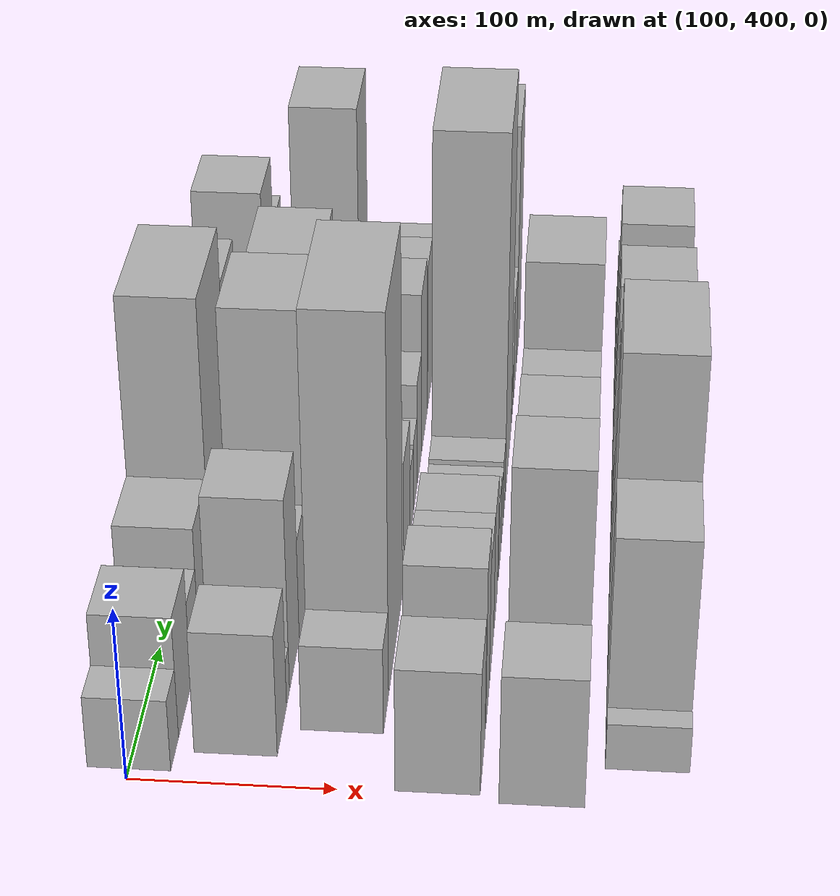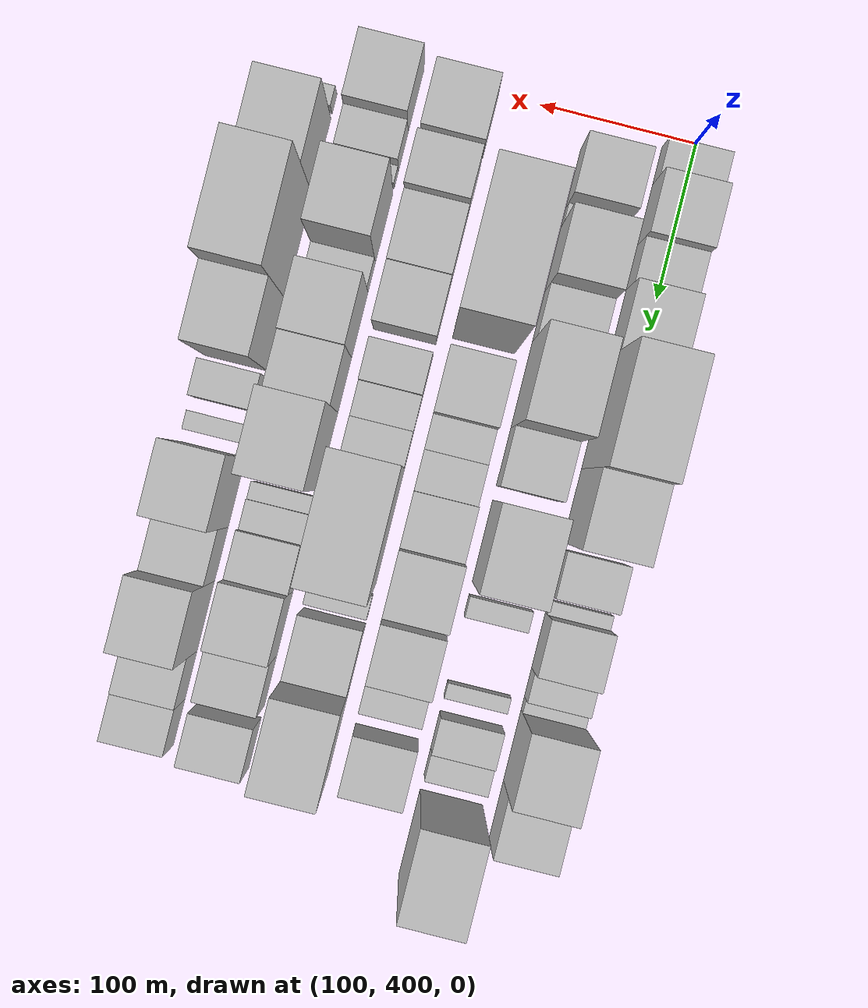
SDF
<sdf version="1.6">
 <world name="default">
  <model name="building_34">
   <static>1</static>
   <pose>100.0000 419.4224 0 0.000000 0.000000 0.000000</pose>
   <link name="link">
    <pose>0 0 21.00 0 0 0</pose>
    <collision name="collision"><geometry><box><size>40.0000 24.1710 42.0000</size></box></geometry></collision>
    <visual name="visual">
     <cast_shadows>0</cast_shadows>
     <geometry><box><size>40.0000 24.1710 42.0000</size></box></geometry>
     <material>
      <script>
       <uri>model://HANNAS_wall/materials/scripts</uri>
       <uri>model://HANNAS_wall/materials/textures</uri>
       <name>vrc/HANNAS_wall</name>
      </script>
     </material>
    </visual>
   </link>
  </model>
  <model name="building_35">
   <static>1</static>
   <pose>100.0000 451.1182 0 0.000000 0.000000 0.000000</pose>
   <link name="link">
    <pose>0 0 36.00 0 0 0</pose>
    <collision name="collision"><geometry><box><size>40.0000 39.2206 72.0000</size></box></geometry></collision>
    <visual name="visual">
     <cast_shadows>0</cast_shadows>
     <geometry><box><size>40.0000 39.2206 72.0000</size></box></geometry>
     <material>
      <script>
       <uri>model://HANNAS_wall/materials/scripts</uri>
       <uri>model://HANNAS_wall/materials/textures</uri>
       <name>vrc/HANNAS_wall</name>
      </script>
     </material>
    </visual>
   </link>
  </model>
  <model name="building_36">
   <static>1</static>
   <pose>100.0000 484.8960 0 0.000000 0.000000 0.000000</pose>
   <link name="link">
    <pose>0 0 25.50 0 0 0</pose>
    <collision name="collision"><geometry><box><size>40.0000 28.3350 51.0000</size></box></geometry></collision>
    <visual name="visual">
     <cast_shadows>0</cast_shadows>
     <geometry><box><size>40.0000 28.3350 51.0000</size></box></geometry>
     <material>
      <script>
       <uri>model://HANNAS_wall/materials/scripts</uri>
       <uri>model://HANNAS_wall/materials/textures</uri>
       <name>vrc/HANNAS_wall</name>
      </script>
     </material>
    </visual>
   </link>
  </model>
  <model name="building_37">
   <static>1</static>
   <pose>100.0000 520.7871 0 0.000000 0.000000 0.000000</pose>
   <link name="link">
    <pose>0 0 37.50 0 0 0</pose>
    <collision name="collision"><geometry><box><size>40.0000 43.4472 75.0000</size></box></geometry></collision>
    <visual name="visual">
     <cast_shadows>0</cast_shadows>
     <geometry><box><size>40.0000 43.4472 75.0000</size></box></geometry>
     <material>
      <script>
       <uri>model://HANNAS_wall/materials/scripts</uri>
       <uri>model://HANNAS_wall/materials/textures</uri>
       <name>vrc/HANNAS_wall</name>
      </script>
     </material>
    </visual>
   </link>
  </model>
  <model name="building_38">
   <static>1</static>
   <pose>100.0000 578.3830 0 0.000000 0.000000 0.000000</pose>
   <link name="link">
    <pose>0 0 90.00 0 0 0</pose>
    <collision name="collision"><geometry><box><size>40.0000 71.7446 180.0000</size></box></geometry></collision>
    <visual name="visual">
     <cast_shadows>0</cast_shadows>
     <geometry><box><size>40.0000 71.7446 180.0000</size></box></geometry>
     <material>
      <script>
       <uri>model://HANNAS_wall/materials/scripts</uri>
       <uri>model://HANNAS_wall/materials/textures</uri>
       <name>vrc/HANNAS_wall</name>
      </script>
     </material>
    </visual>
   </link>
  </model>
  <model name="building_39">
   <static>1</static>
   <pose>100.0000 637.8473 0 0.000000 0.000000 0.000000</pose>
   <link name="link">
    <pose>0 0 73.50 0 0 0</pose>
    <collision name="collision"><geometry><box><size>40.0000 47.1841 147.0000</size></box></geometry></collision>
    <visual name="visual">
     <cast_shadows>0</cast_shadows>
     <geometry><box><size>40.0000 47.1841 147.0000</size></box></geometry>
     <material>
      <script>
       <uri>model://HANNAS_wall/materials/scripts</uri>
       <uri>model://HANNAS_wall/materials/textures</uri>
       <name>vrc/HANNAS_wall</name>
      </script>
     </material>
    </visual>
   </link>
  </model>
  <model name="building_40">
   <static>1</static>
   <pose>100.0000 680.1774 0 0.000000 0.000000 0.000000</pose>
   <link name="link">
    <pose>0 0 27.00 0 0 0</pose>
    <collision name="collision"><geometry><box><size>40.0000 29.4762 54.0000</size></box></geometry></collision>
    <visual name="visual">
     <cast_shadows>0</cast_shadows>
     <geometry><box><size>40.0000 29.4762 54.0000</size></box></geometry>
     <material>
      <script>
       <uri>model://HANNAS_wall/materials/scripts</uri>
       <uri>model://HANNAS_wall/materials/textures</uri>
       <name>vrc/HANNAS_wall</name>
      </script>
     </material>
    </visual>
   </link>
  </model>
  <model name="building_41">
   <static>1</static>
   <pose>100.0000 702.4432 0 0.000000 0.000000 0.000000</pose>
   <link name="link">
    <pose>0 0 10.50 0 0 0</pose>
    <collision name="collision"><geometry><box><size>40.0000 9.0554 21.0000</size></box></geometry></collision>
    <visual name="visual">
     <cast_shadows>0</cast_shadows>
     <geometry><box><size>40.0000 9.0554 21.0000</size></box></geometry>
     <material>
      <script>
       <uri>model://HANNAS_wall/materials/scripts</uri>
       <uri>model://HANNAS_wall/materials/textures</uri>
       <name>vrc/HANNAS_wall</name>
      </script>
     </material>
    </visual>
   </link>
  </model>
  <model name="building_42">
   <static>1</static>
   <pose>100.0000 724.6677 0 0.000000 0.000000 0.000000</pose>
   <link name="link">
    <pose>0 0 31.50 0 0 0</pose>
    <collision name="collision"><geometry><box><size>40.0000 35.3935 63.0000</size></box></geometry></collision>
    <visual name="visual">
     <cast_shadows>0</cast_shadows>
     <geometry><box><size>40.0000 35.3935 63.0000</size></box></geometry>
     <material>
      <script>
       <uri>model://HANNAS_wall/materials/scripts</uri>
       <uri>model://HANNAS_wall/materials/textures</uri>
       <name>vrc/HANNAS_wall</name>
      </script>
     </material>
    </visual>
   </link>
  </model>
  <model name="building_43">
   <static>1</static>
   <pose>100.0000 751.5607 0 0.000000 0.000000 0.000000</pose>
   <link name="link">
    <pose>0 0 18.00 0 0 0</pose>
    <collision name="collision"><geometry><box><size>40.0000 18.3925 36.0000</size></box></geometry></collision>
    <visual name="visual">
     <cast_shadows>0</cast_shadows>
     <geometry><box><size>40.0000 18.3925 36.0000</size></box></geometry>
     <material>
      <script>
       <uri>model://HANNAS_wall/materials/scripts</uri>
       <uri>model://HANNAS_wall/materials/textures</uri>
       <name>vrc/HANNAS_wall</name>
      </script>
     </material>
    </visual>
   </link>
  </model>
  <model name="building_44">
   <static>1</static>
   <pose>100.0000 764.9816 0 0.000000 0.000000 0.000000</pose>
   <link name="link">
    <pose>0 0 10.50 0 0 0</pose>
    <collision name="collision"><geometry><box><size>40.0000 8.4495 21.0000</size></box></geometry></collision>
    <visual name="visual">
     <cast_shadows>0</cast_shadows>
     <geometry><box><size>40.0000 8.4495 21.0000</size></box></geometry>
     <material>
      <script>
       <uri>model://HANNAS_wall/materials/scripts</uri>
       <uri>model://HANNAS_wall/materials/textures</uri>
       <name>vrc/HANNAS_wall</name>
      </script>
     </material>
    </visual>
   </link>
  </model>
  <model name="building_45">
   <static>1</static>
   <pose>100.0000 791.9245 0 0.000000 0.000000 0.000000</pose>
   <link name="link">
    <pose>0 0 58.50 0 0 0</pose>
    <collision name="collision"><geometry><box><size>40.0000 45.4362 117.0000</size></box></geometry></collision>
    <visual name="visual">
     <cast_shadows>0</cast_shadows>
     <geometry><box><size>40.0000 45.4362 117.0000</size></box></geometry>
     <material>
      <script>
       <uri>model://HANNAS_wall/materials/scripts</uri>
       <uri>model://HANNAS_wall/materials/textures</uri>
       <name>vrc/HANNAS_wall</name>
      </script>
     </material>
    </visual>
   </link>
  </model>
  <model name="building_46">
   <static>1</static>
   <pose>100.0000 833.3077 0 0.000000 0.000000 0.000000</pose>
   <link name="link">
    <pose>0 0 36.00 0 0 0</pose>
    <collision name="collision"><geometry><box><size>40.0000 37.3301 72.0000</size></box></geometry></collision>
    <visual name="visual">
     <cast_shadows>0</cast_shadows>
     <geometry><box><size>40.0000 37.3301 72.0000</size></box></geometry>
     <material>
      <script>
       <uri>model://HANNAS_wall/materials/scripts</uri>
       <uri>model://HANNAS_wall/materials/textures</uri>
       <name>vrc/HANNAS_wall</name>
      </script>
     </material>
    </visual>
   </link>
  </model>
  <model name="building_85">
   <static>1</static>
   <pose>149.0000 440.3022 0 0.000000 0.000000 0.000000</pose>
   <link name="link">
    <pose>0 0 36.00 0 0 0</pose>
    <collision name="collision"><geometry><box><size>40.0000 37.3948 72.0000</size></box></geometry></collision>
    <visual name="visual">
     <cast_shadows>0</cast_shadows>
     <geometry><box><size>40.0000 37.3948 72.0000</size></box></geometry>
     <material>
      <script>
       <uri>model://HANNAS_wall/materials/scripts</uri>
       <uri>model://HANNAS_wall/materials/textures</uri>
       <name>vrc/HANNAS_wall</name>
      </script>
     </material>
    </visual>
   </link>
  </model>
  <model name="building_86">
   <static>1</static>
   <pose>149.0000 465.1572 0 0.000000 0.000000 0.000000</pose>
   <link name="link">
    <pose>0 0 13.50 0 0 0</pose>
    <collision name="collision"><geometry><box><size>40.0000 12.3152 27.0000</size></box></geometry></collision>
    <visual name="visual">
     <cast_shadows>0</cast_shadows>
     <geometry><box><size>40.0000 12.3152 27.0000</size></box></geometry>
     <material>
      <script>
       <uri>model://HANNAS_wall/materials/scripts</uri>
       <uri>model://HANNAS_wall/materials/textures</uri>
       <name>vrc/HANNAS_wall</name>
      </script>
     </material>
    </visual>
   </link>
  </model>
  <model name="building_87">
   <static>1</static>
   <pose>149.0000 492.0625 0 0.000000 0.000000 0.000000</pose>
   <link name="link">
    <pose>0 0 57.00 0 0 0</pose>
    <collision name="collision"><geometry><box><size>40.0000 41.4954 114.0000</size></box></geometry></collision>
    <visual name="visual">
     <cast_shadows>0</cast_shadows>
     <geometry><box><size>40.0000 41.4954 114.0000</size></box></geometry>
     <material>
      <script>
       <uri>model://HANNAS_wall/materials/scripts</uri>
       <uri>model://HANNAS_wall/materials/textures</uri>
       <name>vrc/HANNAS_wall</name>
      </script>
     </material>
    </visual>
   </link>
  </model>
  <model name="building_88">
   <static>1</static>
   <pose>149.0000 528.8958 0 0.000000 0.000000 0.000000</pose>
   <link name="link">
    <pose>0 0 30.00 0 0 0</pose>
    <collision name="collision"><geometry><box><size>40.0000 32.1713 60.0000</size></box></geometry></collision>
    <visual name="visual">
     <cast_shadows>0</cast_shadows>
     <geometry><box><size>40.0000 32.1713 60.0000</size></box></geometry>
     <material>
      <script>
       <uri>model://HANNAS_wall/materials/scripts</uri>
       <uri>model://HANNAS_wall/materials/textures</uri>
       <name>vrc/HANNAS_wall</name>
      </script>
     </material>
    </visual>
   </link>
  </model>
  <model name="building_89">
   <static>1</static>
   <pose>149.0000 572.7408 0 0.000000 0.000000 0.000000</pose>
   <link name="link">
    <pose>0 0 87.00 0 0 0</pose>
    <collision name="collision"><geometry><box><size>40.0000 55.5187 174.0000</size></box></geometry></collision>
    <visual name="visual">
     <cast_shadows>0</cast_shadows>
     <geometry><box><size>40.0000 55.5187 174.0000</size></box></geometry>
     <material>
      <script>
       <uri>model://HANNAS_wall/materials/scripts</uri>
       <uri>model://HANNAS_wall/materials/textures</uri>
       <name>vrc/HANNAS_wall</name>
      </script>
     </material>
    </visual>
   </link>
  </model>
  <model name="building_90">
   <static>1</static>
   <pose>149.0000 619.0913 0 0.000000 0.000000 0.000000</pose>
   <link name="link">
    <pose>0 0 33.00 0 0 0</pose>
    <collision name="collision"><geometry><box><size>40.0000 37.1822 66.0000</size></box></geometry></collision>
    <visual name="visual">
     <cast_shadows>0</cast_shadows>
     <geometry><box><size>40.0000 37.1822 66.0000</size></box></geometry>
     <material>
      <script>
       <uri>model://HANNAS_wall/materials/scripts</uri>
       <uri>model://HANNAS_wall/materials/textures</uri>
       <name>vrc/HANNAS_wall</name>
      </script>
     </material>
    </visual>
   </link>
  </model>
  <model name="building_91">
   <static>1</static>
   <pose>149.0000 672.8880 0 0.000000 0.000000 0.000000</pose>
   <link name="link">
    <pose>0 0 73.50 0 0 0</pose>
    <collision name="collision"><geometry><box><size>40.0000 52.4113 147.0000</size></box></geometry></collision>
    <visual name="visual">
     <cast_shadows>0</cast_shadows>
     <geometry><box><size>40.0000 52.4113 147.0000</size></box></geometry>
     <material>
      <script>
       <uri>model://HANNAS_wall/materials/scripts</uri>
       <uri>model://HANNAS_wall/materials/textures</uri>
       <name>vrc/HANNAS_wall</name>
      </script>
     </material>
    </visual>
   </link>
  </model>
  <model name="building_92">
   <static>1</static>
   <pose>149.0000 713.7299 0 0.000000 0.000000 0.000000</pose>
   <link name="link">
    <pose>0 0 13.50 0 0 0</pose>
    <collision name="collision"><geometry><box><size>40.0000 13.2725 27.0000</size></box></geometry></collision>
    <visual name="visual">
     <cast_shadows>0</cast_shadows>
     <geometry><box><size>40.0000 13.2725 27.0000</size></box></geometry>
     <material>
      <script>
       <uri>model://HANNAS_wall/materials/scripts</uri>
       <uri>model://HANNAS_wall/materials/textures</uri>
       <name>vrc/HANNAS_wall</name>
      </script>
     </material>
    </visual>
   </link>
  </model>
  <model name="building_93">
   <static>1</static>
   <pose>149.0000 767.0707 0 0.000000 0.000000 0.000000</pose>
   <link name="link">
    <pose>0 0 10.50 0 0 0</pose>
    <collision name="collision"><geometry><box><size>40.0000 9.8030 21.0000</size></box></geometry></collision>
    <visual name="visual">
     <cast_shadows>0</cast_shadows>
     <geometry><box><size>40.0000 9.8030 21.0000</size></box></geometry>
     <material>
      <script>
       <uri>model://HANNAS_wall/materials/scripts</uri>
       <uri>model://HANNAS_wall/materials/textures</uri>
       <name>vrc/HANNAS_wall</name>
      </script>
     </material>
    </visual>
   </link>
  </model>
  <model name="building_94">
   <static>1</static>
   <pose>149.0000 793.4504 0 0.000000 0.000000 0.000000</pose>
   <link name="link">
    <pose>0 0 21.00 0 0 0</pose>
    <collision name="collision"><geometry><box><size>40.0000 22.9564 42.0000</size></box></geometry></collision>
    <visual name="visual">
     <cast_shadows>0</cast_shadows>
     <geometry><box><size>40.0000 22.9564 42.0000</size></box></geometry>
     <material>
      <script>
       <uri>model://HANNAS_wall/materials/scripts</uri>
       <uri>model://HANNAS_wall/materials/textures</uri>
       <name>vrc/HANNAS_wall</name>
      </script>
     </material>
    </visual>
   </link>
  </model>
  <model name="building_95">
   <static>1</static>
   <pose>149.0000 813.7550 0 0.000000 0.000000 0.000000</pose>
   <link name="link">
    <pose>0 0 16.50 0 0 0</pose>
    <collision name="collision"><geometry><box><size>40.0000 17.6529 33.0000</size></box></geometry></collision>
    <visual name="visual">
     <cast_shadows>0</cast_shadows>
     <geometry><box><size>40.0000 17.6529 33.0000</size></box></geometry>
     <material>
      <script>
       <uri>model://HANNAS_wall/materials/scripts</uri>
       <uri>model://HANNAS_wall/materials/textures</uri>
       <name>vrc/HANNAS_wall</name>
      </script>
     </material>
    </visual>
   </link>
  </model>
  <model name="building_96">
   <static>1</static>
   <pose>149.0000 860.2175 0 0.000000 0.000000 0.000000</pose>
   <link name="link">
    <pose>0 0 70.50 0 0 0</pose>
    <collision name="collision"><geometry><box><size>40.0000 55.2720 141.0000</size></box></geometry></collision>
    <visual name="visual">
     <cast_shadows>0</cast_shadows>
     <geometry><box><size>40.0000 55.2720 141.0000</size></box></geometry>
     <material>
      <script>
       <uri>model://HANNAS_wall/materials/scripts</uri>
       <uri>model://HANNAS_wall/materials/textures</uri>
       <name>vrc/HANNAS_wall</name>
      </script>
     </material>
    </visual>
   </link>
  </model>
  <model name="building_131">
   <static>1</static>
   <pose>198.0000 456.5234 0 0.000000 0.000000 0.000000</pose>
   <link name="link">
    <pose>0 0 25.50 0 0 0</pose>
    <collision name="collision"><geometry><box><size>40.0000 28.8919 51.0000</size></box></geometry></collision>
    <visual name="visual">
     <cast_shadows>0</cast_shadows>
     <geometry><box><size>40.0000 28.8919 51.0000</size></box></geometry>
     <material>
      <script>
       <uri>model://HANNAS_wall/materials/scripts</uri>
       <uri>model://HANNAS_wall/materials/textures</uri>
       <name>vrc/HANNAS_wall</name>
      </script>
     </material>
    </visual>
   </link>
  </model>
  <model name="building_132">
   <static>1</static>
   <pose>198.0000 512.8881 0 0.000000 0.000000 0.000000</pose>
   <link name="link">
    <pose>0 0 109.50 0 0 0</pose>
    <collision name="collision"><geometry><box><size>40.0000 83.8376 219.0000</size></box></geometry></collision>
    <visual name="visual">
     <cast_shadows>0</cast_shadows>
     <geometry><box><size>40.0000 83.8376 219.0000</size></box></geometry>
     <material>
      <script>
       <uri>model://HANNAS_wall/materials/scripts</uri>
       <uri>model://HANNAS_wall/materials/textures</uri>
       <name>vrc/HANNAS_wall</name>
      </script>
     </material>
    </visual>
   </link>
  </model>
  <model name="building_133">
   <static>1</static>
   <pose>198.0000 584.2615 0 0.000000 0.000000 0.000000</pose>
   <link name="link">
    <pose>0 0 37.50 0 0 0</pose>
    <collision name="collision"><geometry><box><size>40.0000 40.9090 75.0000</size></box></geometry></collision>
    <visual name="visual">
     <cast_shadows>0</cast_shadows>
     <geometry><box><size>40.0000 40.9090 75.0000</size></box></geometry>
     <material>
      <script>
       <uri>model://HANNAS_wall/materials/scripts</uri>
       <uri>model://HANNAS_wall/materials/textures</uri>
       <name>vrc/HANNAS_wall</name>
      </script>
     </material>
    </visual>
   </link>
  </model>
  <model name="building_134">
   <static>1</static>
   <pose>198.0000 615.8576 0 0.000000 0.000000 0.000000</pose>
   <link name="link">
    <pose>0 0 21.00 0 0 0</pose>
    <collision name="collision"><geometry><box><size>40.0000 22.2832 42.0000</size></box></geometry></collision>
    <visual name="visual">
     <cast_shadows>0</cast_shadows>
     <geometry><box><size>40.0000 22.2832 42.0000</size></box></geometry>
     <material>
      <script>
       <uri>model://HANNAS_wall/materials/scripts</uri>
       <uri>model://HANNAS_wall/materials/textures</uri>
       <name>vrc/HANNAS_wall</name>
      </script>
     </material>
    </visual>
   </link>
  </model>
  <model name="building_135">
   <static>1</static>
   <pose>198.0000 639.9165 0 0.000000 0.000000 0.000000</pose>
   <link name="link">
    <pose>0 0 22.50 0 0 0</pose>
    <collision name="collision"><geometry><box><size>40.0000 25.8346 45.0000</size></box></geometry></collision>
    <visual name="visual">
     <cast_shadows>0</cast_shadows>
     <geometry><box><size>40.0000 25.8346 45.0000</size></box></geometry>
     <material>
      <script>
       <uri>model://HANNAS_wall/materials/scripts</uri>
       <uri>model://HANNAS_wall/materials/textures</uri>
       <name>vrc/HANNAS_wall</name>
      </script>
     </material>
    </visual>
   </link>
  </model>
  <model name="building_136">
   <static>1</static>
   <pose>198.0000 670.2454 0 0.000000 0.000000 0.000000</pose>
   <link name="link">
    <pose>0 0 33.00 0 0 0</pose>
    <collision name="collision"><geometry><box><size>40.0000 34.8232 66.0000</size></box></geometry></collision>
    <visual name="visual">
     <cast_shadows>0</cast_shadows>
     <geometry><box><size>40.0000 34.8232 66.0000</size></box></geometry>
     <material>
      <script>
       <uri>model://HANNAS_wall/materials/scripts</uri>
       <uri>model://HANNAS_wall/materials/textures</uri>
       <name>vrc/HANNAS_wall</name>
      </script>
     </material>
    </visual>
   </link>
  </model>
  <model name="building_137">
   <static>1</static>
   <pose>198.0000 707.8980 0 0.000000 0.000000 0.000000</pose>
   <link name="link">
    <pose>0 0 51.00 0 0 0</pose>
    <collision name="collision"><geometry><box><size>40.0000 40.4820 102.0000</size></box></geometry></collision>
    <visual name="visual">
     <cast_shadows>0</cast_shadows>
     <geometry><box><size>40.0000 40.4820 102.0000</size></box></geometry>
     <material>
      <script>
       <uri>model://HANNAS_wall/materials/scripts</uri>
       <uri>model://HANNAS_wall/materials/textures</uri>
       <name>vrc/HANNAS_wall</name>
      </script>
     </material>
    </visual>
   </link>
  </model>
  <model name="building_138">
   <static>1</static>
   <pose>198.0000 750.4562 0 0.000000 0.000000 0.000000</pose>
   <link name="link">
    <pose>0 0 46.50 0 0 0</pose>
    <collision name="collision"><geometry><box><size>40.0000 36.6344 93.0000</size></box></geometry></collision>
    <visual name="visual">
     <cast_shadows>0</cast_shadows>
     <geometry><box><size>40.0000 36.6344 93.0000</size></box></geometry>
     <material>
      <script>
       <uri>model://HANNAS_wall/materials/scripts</uri>
       <uri>model://HANNAS_wall/materials/textures</uri>
       <name>vrc/HANNAS_wall</name>
      </script>
     </material>
    </visual>
   </link>
  </model>
  <model name="building_139">
   <static>1</static>
   <pose>198.0000 783.6331 0 0.000000 0.000000 0.000000</pose>
   <link name="link">
    <pose>0 0 16.50 0 0 0</pose>
    <collision name="collision"><geometry><box><size>40.0000 17.7194 33.0000</size></box></geometry></collision>
    <visual name="visual">
     <cast_shadows>0</cast_shadows>
     <geometry><box><size>40.0000 17.7194 33.0000</size></box></geometry>
     <material>
      <script>
       <uri>model://HANNAS_wall/materials/scripts</uri>
       <uri>model://HANNAS_wall/materials/textures</uri>
       <name>vrc/HANNAS_wall</name>
      </script>
     </material>
    </visual>
   </link>
  </model>
  <model name="building_140">
   <static>1</static>
   <pose>198.0000 821.1276 0 0.000000 0.000000 0.000000</pose>
   <link name="link">
    <pose>0 0 31.50 0 0 0</pose>
    <collision name="collision"><geometry><box><size>40.0000 37.2697 63.0000</size></box></geometry></collision>
    <visual name="visual">
     <cast_shadows>0</cast_shadows>
     <geometry><box><size>40.0000 37.2697 63.0000</size></box></geometry>
     <material>
      <script>
       <uri>model://HANNAS_wall/materials/scripts</uri>
       <uri>model://HANNAS_wall/materials/textures</uri>
       <name>vrc/HANNAS_wall</name>
      </script>
     </material>
    </visual>
   </link>
  </model>
  <model name="building_178">
   <static>1</static>
   <pose>247.0000 421.5525 0 0.000000 0.000000 0.000000</pose>
   <link name="link">
    <pose>0 0 36.00 0 0 0</pose>
    <collision name="collision"><geometry><box><size>40.0000 40.7395 72.0000</size></box></geometry></collision>
    <visual name="visual">
     <cast_shadows>0</cast_shadows>
     <geometry><box><size>40.0000 40.7395 72.0000</size></box></geometry>
     <material>
      <script>
       <uri>model://HANNAS_wall/materials/scripts</uri>
       <uri>model://HANNAS_wall/materials/textures</uri>
       <name>vrc/HANNAS_wall</name>
      </script>
     </material>
    </visual>
   </link>
  </model>
  <model name="building_179">
   <static>1</static>
   <pose>247.0000 465.1388 0 0.000000 0.000000 0.000000</pose>
   <link name="link">
    <pose>0 0 48.00 0 0 0</pose>
    <collision name="collision"><geometry><box><size>40.0000 32.4333 96.0000</size></box></geometry></collision>
    <visual name="visual">
     <cast_shadows>0</cast_shadows>
     <geometry><box><size>40.0000 32.4333 96.0000</size></box></geometry>
     <material>
      <script>
       <uri>model://HANNAS_wall/materials/scripts</uri>
       <uri>model://HANNAS_wall/materials/textures</uri>
       <name>vrc/HANNAS_wall</name>
      </script>
     </material>
    </visual>
   </link>
  </model>
  <model name="building_180">
   <static>1</static>
   <pose>247.0000 502.7271 0 0.000000 0.000000 0.000000</pose>
   <link name="link">
    <pose>0 0 37.50 0 0 0</pose>
    <collision name="collision"><geometry><box><size>40.0000 42.7432 75.0000</size></box></geometry></collision>
    <visual name="visual">
     <cast_shadows>0</cast_shadows>
     <geometry><box><size>40.0000 42.7432 75.0000</size></box></geometry>
     <material>
      <script>
       <uri>model://HANNAS_wall/materials/scripts</uri>
       <uri>model://HANNAS_wall/materials/textures</uri>
       <name>vrc/HANNAS_wall</name>
      </script>
     </material>
    </visual>
   </link>
  </model>
  <model name="building_181">
   <static>1</static>
   <pose>247.0000 542.6879 0 0.000000 0.000000 0.000000</pose>
   <link name="link">
    <pose>0 0 36.00 0 0 0</pose>
    <collision name="collision"><geometry><box><size>40.0000 37.1784 72.0000</size></box></geometry></collision>
    <visual name="visual">
     <cast_shadows>0</cast_shadows>
     <geometry><box><size>40.0000 37.1784 72.0000</size></box></geometry>
     <material>
      <script>
       <uri>model://HANNAS_wall/materials/scripts</uri>
       <uri>model://HANNAS_wall/materials/textures</uri>
       <name>vrc/HANNAS_wall</name>
      </script>
     </material>
    </visual>
   </link>
  </model>
  <model name="building_182">
   <static>1</static>
   <pose>247.0000 582.5603 0 0.000000 0.000000 0.000000</pose>
   <link name="link">
    <pose>0 0 24.00 0 0 0</pose>
    <collision name="collision"><geometry><box><size>40.0000 26.5664 48.0000</size></box></geometry></collision>
    <visual name="visual">
     <cast_shadows>0</cast_shadows>
     <geometry><box><size>40.0000 26.5664 48.0000</size></box></geometry>
     <material>
      <script>
       <uri>model://HANNAS_wall/materials/scripts</uri>
       <uri>model://HANNAS_wall/materials/textures</uri>
       <name>vrc/HANNAS_wall</name>
      </script>
     </material>
    </visual>
   </link>
  </model>
  <model name="building_183">
   <static>1</static>
   <pose>247.0000 607.0561 0 0.000000 0.000000 0.000000</pose>
   <link name="link">
    <pose>0 0 19.50 0 0 0</pose>
    <collision name="collision"><geometry><box><size>40.0000 22.4253 39.0000</size></box></geometry></collision>
    <visual name="visual">
     <cast_shadows>0</cast_shadows>
     <geometry><box><size>40.0000 22.4253 39.0000</size></box></geometry>
     <material>
      <script>
       <uri>model://HANNAS_wall/materials/scripts</uri>
       <uri>model://HANNAS_wall/materials/textures</uri>
       <name>vrc/HANNAS_wall</name>
      </script>
     </material>
    </visual>
   </link>
  </model>
  <model name="building_184">
   <static>1</static>
   <pose>247.0000 629.6428 0 0.000000 0.000000 0.000000</pose>
   <link name="link">
    <pose>0 0 21.00 0 0 0</pose>
    <collision name="collision"><geometry><box><size>40.0000 22.7481 42.0000</size></box></geometry></collision>
    <visual name="visual">
     <cast_shadows>0</cast_shadows>
     <geometry><box><size>40.0000 22.7481 42.0000</size></box></geometry>
     <material>
      <script>
       <uri>model://HANNAS_wall/materials/scripts</uri>
       <uri>model://HANNAS_wall/materials/textures</uri>
       <name>vrc/HANNAS_wall</name>
      </script>
     </material>
    </visual>
   </link>
  </model>
  <model name="building_185">
   <static>1</static>
   <pose>247.0000 678.1860 0 0.000000 0.000000 0.000000</pose>
   <link name="link">
    <pose>0 0 112.50 0 0 0</pose>
    <collision name="collision"><geometry><box><size>40.0000 74.3383 225.0000</size></box></geometry></collision>
    <visual name="visual">
     <cast_shadows>0</cast_shadows>
     <geometry><box><size>40.0000 74.3383 225.0000</size></box></geometry>
     <material>
      <script>
       <uri>model://HANNAS_wall/materials/scripts</uri>
       <uri>model://HANNAS_wall/materials/textures</uri>
       <name>vrc/HANNAS_wall</name>
      </script>
     </material>
    </visual>
   </link>
  </model>
  <model name="building_186">
   <static>1</static>
   <pose>247.0000 728.9093 0 0.000000 0.000000 0.000000</pose>
   <link name="link">
    <pose>0 0 15.00 0 0 0</pose>
    <collision name="collision"><geometry><box><size>40.0000 15.1083 30.0000</size></box></geometry></collision>
    <visual name="visual">
     <cast_shadows>0</cast_shadows>
     <geometry><box><size>40.0000 15.1083 30.0000</size></box></geometry>
     <material>
      <script>
       <uri>model://HANNAS_wall/materials/scripts</uri>
       <uri>model://HANNAS_wall/materials/textures</uri>
       <name>vrc/HANNAS_wall</name>
      </script>
     </material>
    </visual>
   </link>
  </model>
  <model name="building_187">
   <static>1</static>
   <pose>247.0000 760.5888 0 0.000000 0.000000 0.000000</pose>
   <link name="link">
    <pose>0 0 34.50 0 0 0</pose>
    <collision name="collision"><geometry><box><size>40.0000 40.2507 69.0000</size></box></geometry></collision>
    <visual name="visual">
     <cast_shadows>0</cast_shadows>
     <geometry><box><size>40.0000 40.2507 69.0000</size></box></geometry>
     <material>
      <script>
       <uri>model://HANNAS_wall/materials/scripts</uri>
       <uri>model://HANNAS_wall/materials/textures</uri>
       <name>vrc/HANNAS_wall</name>
      </script>
     </material>
    </visual>
   </link>
  </model>
  <model name="building_188">
   <static>1</static>
   <pose>247.0000 808.2974 0 0.000000 0.000000 0.000000</pose>
   <link name="link">
    <pose>0 0 79.50 0 0 0</pose>
    <collision name="collision"><geometry><box><size>40.0000 55.1666 159.0000</size></box></geometry></collision>
    <visual name="visual">
     <cast_shadows>0</cast_shadows>
     <geometry><box><size>40.0000 55.1666 159.0000</size></box></geometry>
     <material>
      <script>
       <uri>model://HANNAS_wall/materials/scripts</uri>
       <uri>model://HANNAS_wall/materials/textures</uri>
       <name>vrc/HANNAS_wall</name>
      </script>
     </material>
    </visual>
   </link>
  </model>
  <model name="building_227">
   <static>1</static>
   <pose>296.0000 416.7489 0 0.000000 0.000000 0.000000</pose>
   <link name="link">
    <pose>0 0 37.50 0 0 0</pose>
    <collision name="collision"><geometry><box><size>40.0000 41.2842 75.0000</size></box></geometry></collision>
    <visual name="visual">
     <cast_shadows>0</cast_shadows>
     <geometry><box><size>40.0000 41.2842 75.0000</size></box></geometry>
     <material>
      <script>
       <uri>model://HANNAS_wall/materials/scripts</uri>
       <uri>model://HANNAS_wall/materials/textures</uri>
       <name>vrc/HANNAS_wall</name>
      </script>
     </material>
    </visual>
   </link>
  </model>
  <model name="building_228">
   <static>1</static>
   <pose>296.0000 449.7520 0 0.000000 0.000000 0.000000</pose>
   <link name="link">
    <pose>0 0 24.00 0 0 0</pose>
    <collision name="collision"><geometry><box><size>40.0000 24.7220 48.0000</size></box></geometry></collision>
    <visual name="visual">
     <cast_shadows>0</cast_shadows>
     <geometry><box><size>40.0000 24.7220 48.0000</size></box></geometry>
     <material>
      <script>
       <uri>model://HANNAS_wall/materials/scripts</uri>
       <uri>model://HANNAS_wall/materials/textures</uri>
       <name>vrc/HANNAS_wall</name>
      </script>
     </material>
    </visual>
   </link>
  </model>
  <model name="building_229">
   <static>1</static>
   <pose>296.0000 467.5545 0 0.000000 0.000000 0.000000</pose>
   <link name="link">
    <pose>0 0 12.00 0 0 0</pose>
    <collision name="collision"><geometry><box><size>40.0000 10.8832 24.0000</size></box></geometry></collision>
    <visual name="visual">
     <cast_shadows>0</cast_shadows>
     <geometry><box><size>40.0000 10.8832 24.0000</size></box></geometry>
     <material>
      <script>
       <uri>model://HANNAS_wall/materials/scripts</uri>
       <uri>model://HANNAS_wall/materials/textures</uri>
       <name>vrc/HANNAS_wall</name>
      </script>
     </material>
    </visual>
   </link>
  </model>
  <model name="building_230">
   <static>1</static>
   <pose>296.0000 498.4455 0 0.000000 0.000000 0.000000</pose>
   <link name="link">
    <pose>0 0 67.50 0 0 0</pose>
    <collision name="collision"><geometry><box><size>40.0000 44.8987 135.0000</size></box></geometry></collision>
    <visual name="visual">
     <cast_shadows>0</cast_shadows>
     <geometry><box><size>40.0000 44.8987 135.0000</size></box></geometry>
     <material>
      <script>
       <uri>model://HANNAS_wall/materials/scripts</uri>
       <uri>model://HANNAS_wall/materials/textures</uri>
       <name>vrc/HANNAS_wall</name>
      </script>
     </material>
    </visual>
   </link>
  </model>
  <model name="building_231">
   <static>1</static>
   <pose>296.0000 530.4264 0 0.000000 0.000000 0.000000</pose>
   <link name="link">
    <pose>0 0 16.50 0 0 0</pose>
    <collision name="collision"><geometry><box><size>40.0000 19.0630 33.0000</size></box></geometry></collision>
    <visual name="visual">
     <cast_shadows>0</cast_shadows>
     <geometry><box><size>40.0000 19.0630 33.0000</size></box></geometry>
     <material>
      <script>
       <uri>model://HANNAS_wall/materials/scripts</uri>
       <uri>model://HANNAS_wall/materials/textures</uri>
       <name>vrc/HANNAS_wall</name>
      </script>
     </material>
    </visual>
   </link>
  </model>
  <model name="building_232">
   <static>1</static>
   <pose>296.0000 561.0645 0 0.000000 0.000000 0.000000</pose>
   <link name="link">
    <pose>0 0 60.00 0 0 0</pose>
    <collision name="collision"><geometry><box><size>40.0000 42.2134 120.0000</size></box></geometry></collision>
    <visual name="visual">
     <cast_shadows>0</cast_shadows>
     <geometry><box><size>40.0000 42.2134 120.0000</size></box></geometry>
     <material>
      <script>
       <uri>model://HANNAS_wall/materials/scripts</uri>
       <uri>model://HANNAS_wall/materials/textures</uri>
       <name>vrc/HANNAS_wall</name>
      </script>
     </material>
    </visual>
   </link>
  </model>
  <model name="building_233">
   <static>1</static>
   <pose>296.0000 599.6522 0 0.000000 0.000000 0.000000</pose>
   <link name="link">
    <pose>0 0 57.00 0 0 0</pose>
    <collision name="collision"><geometry><box><size>40.0000 34.9619 114.0000</size></box></geometry></collision>
    <visual name="visual">
     <cast_shadows>0</cast_shadows>
     <geometry><box><size>40.0000 34.9619 114.0000</size></box></geometry>
     <material>
      <script>
       <uri>model://HANNAS_wall/materials/scripts</uri>
       <uri>model://HANNAS_wall/materials/textures</uri>
       <name>vrc/HANNAS_wall</name>
      </script>
     </material>
    </visual>
   </link>
  </model>
  <model name="building_234">
   <static>1</static>
   <pose>296.0000 642.2108 0 0.000000 0.000000 0.000000</pose>
   <link name="link">
    <pose>0 0 82.50 0 0 0</pose>
    <collision name="collision"><geometry><box><size>40.0000 50.1552 165.0000</size></box></geometry></collision>
    <visual name="visual">
     <cast_shadows>0</cast_shadows>
     <geometry><box><size>40.0000 50.1552 165.0000</size></box></geometry>
     <material>
      <script>
       <uri>model://HANNAS_wall/materials/scripts</uri>
       <uri>model://HANNAS_wall/materials/textures</uri>
       <name>vrc/HANNAS_wall</name>
      </script>
     </material>
    </visual>
   </link>
  </model>
  <model name="building_235">
   <static>1</static>
   <pose>296.0000 676.9569 0 0.000000 0.000000 0.000000</pose>
   <link name="link">
    <pose>0 0 13.50 0 0 0</pose>
    <collision name="collision"><geometry><box><size>40.0000 11.3372 27.0000</size></box></geometry></collision>
    <visual name="visual">
     <cast_shadows>0</cast_shadows>
     <geometry><box><size>40.0000 11.3372 27.0000</size></box></geometry>
     <material>
      <script>
       <uri>model://HANNAS_wall/materials/scripts</uri>
       <uri>model://HANNAS_wall/materials/textures</uri>
       <name>vrc/HANNAS_wall</name>
      </script>
     </material>
    </visual>
   </link>
  </model>
  <model name="building_236">
   <static>1</static>
   <pose>296.0000 692.1790 0 0.000000 0.000000 0.000000</pose>
   <link name="link">
    <pose>0 0 16.50 0 0 0</pose>
    <collision name="collision"><geometry><box><size>40.0000 19.1070 33.0000</size></box></geometry></collision>
    <visual name="visual">
     <cast_shadows>0</cast_shadows>
     <geometry><box><size>40.0000 19.1070 33.0000</size></box></geometry>
     <material>
      <script>
       <uri>model://HANNAS_wall/materials/scripts</uri>
       <uri>model://HANNAS_wall/materials/textures</uri>
       <name>vrc/HANNAS_wall</name>
      </script>
     </material>
    </visual>
   </link>
  </model>
  <model name="building_237">
   <static>1</static>
   <pose>296.0000 716.9763 0 0.000000 0.000000 0.000000</pose>
   <link name="link">
    <pose>0 0 25.50 0 0 0</pose>
    <collision name="collision"><geometry><box><size>40.0000 30.4874 51.0000</size></box></geometry></collision>
    <visual name="visual">
     <cast_shadows>0</cast_shadows>
     <geometry><box><size>40.0000 30.4874 51.0000</size></box></geometry>
     <material>
      <script>
       <uri>model://HANNAS_wall/materials/scripts</uri>
       <uri>model://HANNAS_wall/materials/textures</uri>
       <name>vrc/HANNAS_wall</name>
      </script>
     </material>
    </visual>
   </link>
  </model>
  <model name="building_238">
   <static>1</static>
   <pose>296.0000 752.9118 0 0.000000 0.000000 0.000000</pose>
   <link name="link">
    <pose>0 0 40.50 0 0 0</pose>
    <collision name="collision"><geometry><box><size>40.0000 41.3837 81.0000</size></box></geometry></collision>
    <visual name="visual">
     <cast_shadows>0</cast_shadows>
     <geometry><box><size>40.0000 41.3837 81.0000</size></box></geometry>
     <material>
      <script>
       <uri>model://HANNAS_wall/materials/scripts</uri>
       <uri>model://HANNAS_wall/materials/textures</uri>
       <name>vrc/HANNAS_wall</name>
      </script>
     </material>
    </visual>
   </link>
  </model>
  <model name="building_239">
   <static>1</static>
   <pose>296.0000 789.9731 0 0.000000 0.000000 0.000000</pose>
   <link name="link">
    <pose>0 0 31.50 0 0 0</pose>
    <collision name="collision"><geometry><box><size>40.0000 32.7388 63.0000</size></box></geometry></collision>
    <visual name="visual">
     <cast_shadows>0</cast_shadows>
     <geometry><box><size>40.0000 32.7388 63.0000</size></box></geometry>
     <material>
      <script>
       <uri>model://HANNAS_wall/materials/scripts</uri>
       <uri>model://HANNAS_wall/materials/textures</uri>
       <name>vrc/HANNAS_wall</name>
      </script>
     </material>
    </visual>
   </link>
  </model>
  <model name="building_240">
   <static>1</static>
   <pose>296.0000 829.7430 0 0.000000 0.000000 0.000000</pose>
   <link name="link">
    <pose>0 0 31.50 0 0 0</pose>
    <collision name="collision"><geometry><box><size>40.0000 32.8011 63.0000</size></box></geometry></collision>
    <visual name="visual">
     <cast_shadows>0</cast_shadows>
     <geometry><box><size>40.0000 32.8011 63.0000</size></box></geometry>
     <material>
      <script>
       <uri>model://HANNAS_wall/materials/scripts</uri>
       <uri>model://HANNAS_wall/materials/textures</uri>
       <name>vrc/HANNAS_wall</name>
      </script>
     </material>
    </visual>
   </link>
  </model>
  <model name="building_273">
   <static>1</static>
   <pose>345.0000 430.6982 0 0.000000 0.000000 0.000000</pose>
   <link name="link">
    <pose>0 0 13.50 0 0 0</pose>
    <collision name="collision"><geometry><box><size>40.0000 12.5830 27.0000</size></box></geometry></collision>
    <visual name="visual">
     <cast_shadows>0</cast_shadows>
     <geometry><box><size>40.0000 12.5830 27.0000</size></box></geometry>
     <material>
      <script>
       <uri>model://HANNAS_wall/materials/scripts</uri>
       <uri>model://HANNAS_wall/materials/textures</uri>
       <name>vrc/HANNAS_wall</name>
      </script>
     </material>
    </visual>
   </link>
  </model>
  <model name="building_274">
   <static>1</static>
   <pose>345.0000 464.3057 0 0.000000 0.000000 0.000000</pose>
   <link name="link">
    <pose>0 0 61.50 0 0 0</pose>
    <collision name="collision"><geometry><box><size>40.0000 48.6320 123.0000</size></box></geometry></collision>
    <visual name="visual">
     <cast_shadows>0</cast_shadows>
     <geometry><box><size>40.0000 48.6320 123.0000</size></box></geometry>
     <material>
      <script>
       <uri>model://HANNAS_wall/materials/scripts</uri>
       <uri>model://HANNAS_wall/materials/textures</uri>
       <name>vrc/HANNAS_wall</name>
      </script>
     </material>
    </visual>
   </link>
  </model>
  <model name="building_275">
   <static>1</static>
   <pose>345.0000 522.5436 0 0.000000 0.000000 0.000000</pose>
   <link name="link">
    <pose>0 0 96.00 0 0 0</pose>
    <collision name="collision"><geometry><box><size>40.0000 67.8439 192.0000</size></box></geometry></collision>
    <visual name="visual">
     <cast_shadows>0</cast_shadows>
     <geometry><box><size>40.0000 67.8439 192.0000</size></box></geometry>
     <material>
      <script>
       <uri>model://HANNAS_wall/materials/scripts</uri>
       <uri>model://HANNAS_wall/materials/textures</uri>
       <name>vrc/HANNAS_wall</name>
      </script>
     </material>
    </visual>
   </link>
  </model>
  <model name="building_276">
   <static>1</static>
   <pose>345.0000 579.6224 0 0.000000 0.000000 0.000000</pose>
   <link name="link">
    <pose>0 0 70.50 0 0 0</pose>
    <collision name="collision"><geometry><box><size>40.0000 46.3136 141.0000</size></box></geometry></collision>
    <visual name="visual">
     <cast_shadows>0</cast_shadows>
     <geometry><box><size>40.0000 46.3136 141.0000</size></box></geometry>
     <material>
      <script>
       <uri>model://HANNAS_wall/materials/scripts</uri>
       <uri>model://HANNAS_wall/materials/textures</uri>
       <name>vrc/HANNAS_wall</name>
      </script>
     </material>
    </visual>
   </link>
  </model>
  <model name="building_277">
   <static>1</static>
   <pose>345.0000 618.3172 0 0.000000 0.000000 0.000000</pose>
   <link name="link">
    <pose>0 0 21.00 0 0 0</pose>
    <collision name="collision"><geometry><box><size>40.0000 23.0759 42.0000</size></box></geometry></collision>
    <visual name="visual">
     <cast_shadows>0</cast_shadows>
     <geometry><box><size>40.0000 23.0759 42.0000</size></box></geometry>
     <material>
      <script>
       <uri>model://HANNAS_wall/materials/scripts</uri>
       <uri>model://HANNAS_wall/materials/textures</uri>
       <name>vrc/HANNAS_wall</name>
      </script>
     </material>
    </visual>
   </link>
  </model>
  <model name="building_278">
   <static>1</static>
   <pose>345.0000 644.7164 0 0.000000 0.000000 0.000000</pose>
   <link name="link">
    <pose>0 0 13.50 0 0 0</pose>
    <collision name="collision"><geometry><box><size>40.0000 11.7225 27.0000</size></box></geometry></collision>
    <visual name="visual">
     <cast_shadows>0</cast_shadows>
     <geometry><box><size>40.0000 11.7225 27.0000</size></box></geometry>
     <material>
      <script>
       <uri>model://HANNAS_wall/materials/scripts</uri>
       <uri>model://HANNAS_wall/materials/textures</uri>
       <name>vrc/HANNAS_wall</name>
      </script>
     </material>
    </visual>
   </link>
  </model>
  <model name="building_279">
   <static>1</static>
   <pose>345.0000 681.0030 0 0.000000 0.000000 0.000000</pose>
   <link name="link">
    <pose>0 0 64.50 0 0 0</pose>
    <collision name="collision"><geometry><box><size>40.0000 44.8507 129.0000</size></box></geometry></collision>
    <visual name="visual">
     <cast_shadows>0</cast_shadows>
     <geometry><box><size>40.0000 44.8507 129.0000</size></box></geometry>
     <material>
      <script>
       <uri>model://HANNAS_wall/materials/scripts</uri>
       <uri>model://HANNAS_wall/materials/textures</uri>
       <name>vrc/HANNAS_wall</name>
      </script>
     </material>
    </visual>
   </link>
  </model>
  <model name="building_280">
   <static>1</static>
   <pose>345.0000 720.7249 0 0.000000 0.000000 0.000000</pose>
   <link name="link">
    <pose>0 0 33.00 0 0 0</pose>
    <collision name="collision"><geometry><box><size>40.0000 34.5931 66.0000</size></box></geometry></collision>
    <visual name="visual">
     <cast_shadows>0</cast_shadows>
     <geometry><box><size>40.0000 34.5931 66.0000</size></box></geometry>
     <material>
      <script>
       <uri>model://HANNAS_wall/materials/scripts</uri>
       <uri>model://HANNAS_wall/materials/textures</uri>
       <name>vrc/HANNAS_wall</name>
      </script>
     </material>
    </visual>
   </link>
  </model>
  <model name="building_281">
   <static>1</static>
   <pose>345.0000 760.5707 0 0.000000 0.000000 0.000000</pose>
   <link name="link">
    <pose>0 0 61.50 0 0 0</pose>
    <collision name="collision"><geometry><box><size>40.0000 45.0985 123.0000</size></box></geometry></collision>
    <visual name="visual">
     <cast_shadows>0</cast_shadows>
     <geometry><box><size>40.0000 45.0985 123.0000</size></box></geometry>
     <material>
      <script>
       <uri>model://HANNAS_wall/materials/scripts</uri>
       <uri>model://HANNAS_wall/materials/textures</uri>
       <name>vrc/HANNAS_wall</name>
      </script>
     </material>
    </visual>
   </link>
  </model>
  <model name="building_282">
   <static>1</static>
   <pose>345.0000 798.7263 0 0.000000 0.000000 0.000000</pose>
   <link name="link">
    <pose>0 0 28.50 0 0 0</pose>
    <collision name="collision"><geometry><box><size>40.0000 31.2128 57.0000</size></box></geometry></collision>
    <visual name="visual">
     <cast_shadows>0</cast_shadows>
     <geometry><box><size>40.0000 31.2128 57.0000</size></box></geometry>
     <material>
      <script>
       <uri>model://HANNAS_wall/materials/scripts</uri>
       <uri>model://HANNAS_wall/materials/textures</uri>
       <name>vrc/HANNAS_wall</name>
      </script>
     </material>
    </visual>
   </link>
  </model>
  <model name="building_283">
   <static>1</static>
   <pose>345.0000 829.0377 0 0.000000 0.000000 0.000000</pose>
   <link name="link">
    <pose>0 0 27.00 0 0 0</pose>
    <collision name="collision"><geometry><box><size>40.0000 29.4100 54.0000</size></box></geometry></collision>
    <visual name="visual">
     <cast_shadows>0</cast_shadows>
     <geometry><box><size>40.0000 29.4100 54.0000</size></box></geometry>
     <material>
      <script>
       <uri>model://HANNAS_wall/materials/scripts</uri>
       <uri>model://HANNAS_wall/materials/textures</uri>
       <name>vrc/HANNAS_wall</name>
      </script>
     </material>
    </visual>
   </link>
  </model>
 </world>
</sdf>
